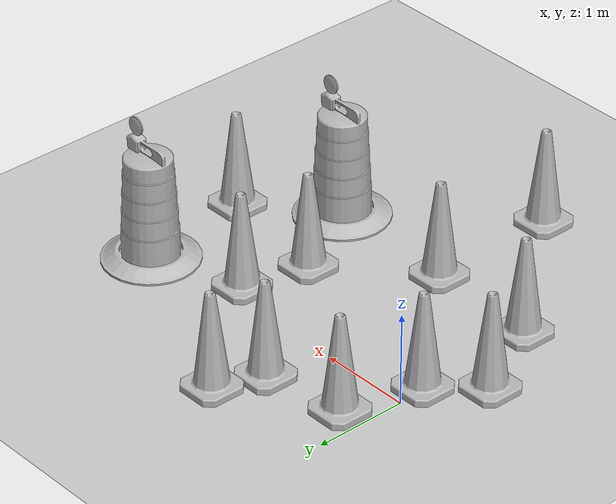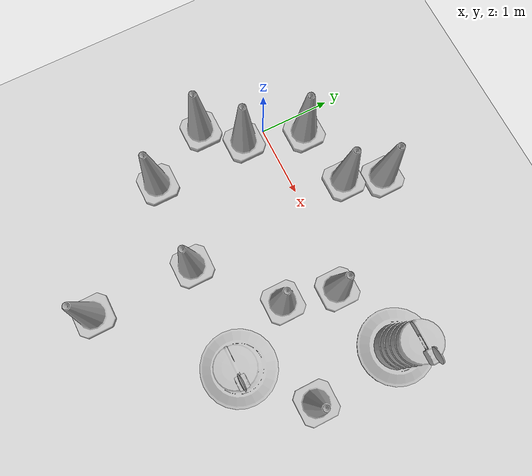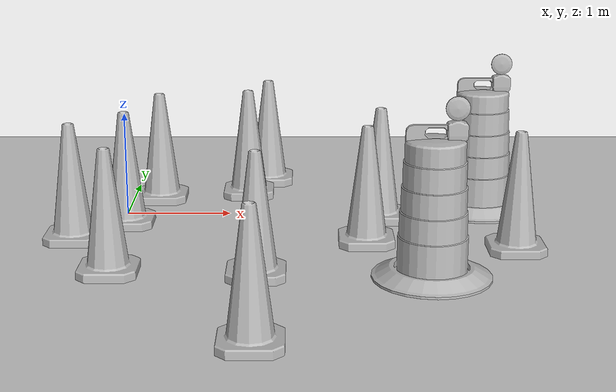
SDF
<sdf version="1.7">
 <world name="default">
  <light name="sun" type="directional">
   <pose>0 0 10 0 -0 0</pose>
   <diffuse>0.8 0.8 0.8 1</diffuse>
   <specular>0.2 0.2 0.2 1</specular>
   <attenuation>
    <range>1000</range>
    <constant>0.9</constant>
    <linear>0.01</linear>
    <quadratic>0.001</quadratic>
   </attenuation>
   <direction>-0.5 0.1 -0.9</direction>
   <spot><inner_angle>0</inner_angle><outer_angle>0</outer_angle><falloff>0</falloff></spot>
  </light>
  <model name="ground_plane">
   <static>1</static>
   <link name="link">
    <collision name="collision">
     <geometry><plane><normal>0 0 1</normal><size>100 100</size></plane></geometry>
     <surface>
      <contact><collide_bitmask>65535</collide_bitmask></contact>
      <friction><ode><mu>100</mu><mu2>50</mu2></ode></friction>
     </surface>
    </collision>
    <visual name="visual">
     <cast_shadows>0</cast_shadows>
     <geometry><plane><normal>0 0 1</normal><size>100 100</size></plane></geometry>
     <material>
      <script><uri>file://media/materials/scripts/gazebo.material</uri><name>Gazebo/Grey</name></script>
     </material>
    </visual>
   </link>
  </model>
  <gravity>0 0 -9.8</gravity>
  <magnetic_field>6e-06 2.3e-05 -4.2e-05</magnetic_field>
  <atmosphere type="adiabatic"/>
  <physics type="ode">
   <max_step_size>0.001</max_step_size>
   <real_time_factor>1</real_time_factor>
   <real_time_update_rate>1000</real_time_update_rate>
  </physics>
  <scene><ambient>0.4 0.4 0.4 1</ambient><background>0.7 0.7 0.7 1</background><shadows>1</shadows></scene>
  <audio><device>default</device></audio>
  <spherical_coordinates>
   <surface_model>EARTH_WGS84</surface_model>
   <latitude_deg>0</latitude_deg>
   <longitude_deg>0</longitude_deg>
   <elevation>0</elevation>
   <heading_deg>0</heading_deg>
  </spherical_coordinates>
  <model name="Construction Cone">
   <link name="link">
    <collision name="collision">
     <geometry>
      <mesh><scale>10 10 10</scale><uri>model://construction_cone/meshes/construction_cone.dae</uri></mesh>
     </geometry>
    </collision>
    <visual name="visual">
     <geometry>
      <mesh><scale>10 10 10</scale><uri>model://construction_cone/meshes/construction_cone.dae</uri></mesh>
     </geometry>
    </visual>
    <inertial>
     <inertia><ixx>1</ixx><ixy>0</ixy><ixz>0</ixz><iyy>1</iyy><iyz>0</iyz><izz>1</izz></inertia>
     <mass>1</mass>
    </inertial>
   </link>
   <pose>1.31264 -1.71887 -0 0 -1e-06 0</pose>
  </model>
  <model name="Construction Barrel">
   <link name="link">
    <inertial>
     <pose>0 0 0.4 0 -0 0</pose>
     <mass>500</mass>
     <inertia><ixx>51.2096</ixx><iyy>51.2096</iyy><izz>25</izz><ixy>0</ixy><ixz>0</ixz><iyz>0</iyz></inertia>
    </inertial>
    <collision name="collision">
     <geometry><mesh><uri>model://construction_barrel/meshes/construction_barrel.dae</uri></mesh></geometry>
    </collision>
    <visual name="visual">
     <geometry><mesh><uri>model://construction_barrel/meshes/construction_barrel.dae</uri></mesh></geometry>
    </visual>
   </link>
   <pose>2.78827 -1.75599 -4e-06 -5e-06 -7e-06 -2.1e-05</pose>
  </model>
  <model name="Construction Cone_0">
   <link name="link">
    <collision name="collision">
     <geometry>
      <mesh><scale>10 10 10</scale><uri>model://construction_cone/meshes/construction_cone.dae</uri></mesh>
     </geometry>
    </collision>
    <visual name="visual">
     <geometry>
      <mesh><scale>10 10 10</scale><uri>model://construction_cone/meshes/construction_cone.dae</uri></mesh>
     </geometry>
    </visual>
    <inertial>
     <inertia><ixx>1</ixx><ixy>0</ixy><ixz>0</ixz><iyy>1</iyy><iyz>0</iyz><izz>1</izz></inertia>
     <mass>1</mass>
    </inertial>
   </link>
   <pose>2.28701 -0.861629 -0 -0 -0 -0</pose>
  </model>
  <model name="Construction Cone_1">
   <link name="link">
    <collision name="collision">
     <geometry>
      <mesh><scale>10 10 10</scale><uri>model://construction_cone/meshes/construction_cone.dae</uri></mesh>
     </geometry>
    </collision>
    <visual name="visual">
     <geometry>
      <mesh><scale>10 10 10</scale><uri>model://construction_cone/meshes/construction_cone.dae</uri></mesh>
     </geometry>
    </visual>
    <inertial>
     <inertia><ixx>1</ixx><ixy>0</ixy><ixz>0</ixz><iyy>1</iyy><iyz>0</iyz><izz>1</izz></inertia>
     <mass>1</mass>
    </inertial>
   </link>
   <pose>2.45169 -0.141372 -0 0 -0 0</pose>
  </model>
  <model name="Construction Barrel_0">
   <link name="link">
    <inertial>
     <pose>0 0 0.4 0 -0 0</pose>
     <mass>500</mass>
     <inertia><ixx>51.2096</ixx><iyy>51.2096</iyy><izz>25</izz><ixy>0</ixy><ixz>0</ixz><iyz>0</iyz></inertia>
    </inertial>
    <collision name="collision">
     <geometry><mesh><uri>model://construction_barrel/meshes/construction_barrel.dae</uri></mesh></geometry>
    </collision>
    <visual name="visual">
     <geometry><mesh><uri>model://construction_barrel/meshes/construction_barrel.dae</uri></mesh></geometry>
    </visual>
   </link>
   <pose>3.45643 0.185545 -2e-06 -7e-06 -4e-06 -1.8e-05</pose>
  </model>
  <model name="Construction Cone_2">
   <link name="link">
    <collision name="collision">
     <geometry>
      <mesh><scale>10 10 10</scale><uri>model://construction_cone/meshes/construction_cone.dae</uri></mesh>
     </geometry>
    </collision>
    <visual name="visual">
     <geometry>
      <mesh><scale>10 10 10</scale><uri>model://construction_cone/meshes/construction_cone.dae</uri></mesh>
     </geometry>
    </visual>
    <inertial>
     <inertia><ixx>1</ixx><ixy>0</ixy><ixz>0</ixz><iyy>1</iyy><iyz>0</iyz><izz>1</izz></inertia>
     <mass>1</mass>
    </inertial>
   </link>
   <pose>1.3518 1.16736 -0 0 -0 0.000181</pose>
  </model>
  <model name="Construction Cone_3">
   <link name="link">
    <collision name="collision">
     <geometry>
      <mesh><scale>10 10 10</scale><uri>model://construction_cone/meshes/construction_cone.dae</uri></mesh>
     </geometry>
    </collision>
    <visual name="visual">
     <geometry>
      <mesh><scale>10 10 10</scale><uri>model://construction_cone/meshes/construction_cone.dae</uri></mesh>
     </geometry>
    </visual>
    <inertial>
     <inertia><ixx>1</ixx><ixy>0</ixy><ixz>0</ixz><iyy>1</iyy><iyz>0</iyz><izz>1</izz></inertia>
     <mass>1</mass>
    </inertial>
   </link>
   <pose>1.15957 0.664402 -0 0 -0 0.000224</pose>
  </model>
  <model name="Construction Cone_4">
   <link name="link">
    <collision name="collision">
     <geometry>
      <mesh><scale>10 10 10</scale><uri>model://construction_cone/meshes/construction_cone.dae</uri></mesh>
     </geometry>
    </collision>
    <visual name="visual">
     <geometry>
      <mesh><scale>10 10 10</scale><uri>model://construction_cone/meshes/construction_cone.dae</uri></mesh>
     </geometry>
    </visual>
    <inertial>
     <inertia><ixx>1</ixx><ixy>0</ixy><ixz>0</ixz><iyy>1</iyy><iyz>0</iyz><izz>1</izz></inertia>
     <mass>1</mass>
    </inertial>
   </link>
   <pose>0.279693 0.510687 -0 0 -1e-06 0</pose>
  </model>
  <model name="Construction Cone_5">
   <link name="link">
    <collision name="collision">
     <geometry>
      <mesh><scale>10 10 10</scale><uri>model://construction_cone/meshes/construction_cone.dae</uri></mesh>
     </geometry>
    </collision>
    <visual name="visual">
     <geometry>
      <mesh><scale>10 10 10</scale><uri>model://construction_cone/meshes/construction_cone.dae</uri></mesh>
     </geometry>
    </visual>
    <inertial>
     <inertia><ixx>1</ixx><ixy>0</ixy><ixz>0</ixz><iyy>1</iyy><iyz>0</iyz><izz>1</izz></inertia>
     <mass>1</mass>
    </inertial>
   </link>
   <pose>0.06083 -1.65281 -0 0 -1e-06 0</pose>
  </model>
  <model name="Construction Cone_6">
   <link name="link">
    <collision name="collision">
     <geometry>
      <mesh><scale>10 10 10</scale><uri>model://construction_cone/meshes/construction_cone.dae</uri></mesh>
     </geometry>
    </collision>
    <visual name="visual">
     <geometry>
      <mesh><scale>10 10 10</scale><uri>model://construction_cone/meshes/construction_cone.dae</uri></mesh>
     </geometry>
    </visual>
    <inertial>
     <inertia><ixx>1</ixx><ixy>0</ixy><ixz>0</ixz><iyy>1</iyy><iyz>0</iyz><izz>1</izz></inertia>
     <mass>1</mass>
    </inertial>
   </link>
   <pose>0.035498 -0.312119 -0 0 -0 0</pose>
  </model>
  <model name="Construction Cone_7">
   <link name="link">
    <collision name="collision">
     <geometry>
      <mesh><scale>10 10 10</scale><uri>model://construction_cone/meshes/construction_cone.dae</uri></mesh>
     </geometry>
    </collision>
    <visual name="visual">
     <geometry>
      <mesh><scale>10 10 10</scale><uri>model://construction_cone/meshes/construction_cone.dae</uri></mesh>
     </geometry>
    </visual>
    <inertial>
     <inertia><ixx>1</ixx><ixy>0</ixy><ixz>0</ixz><iyy>1</iyy><iyz>0</iyz><izz>1</izz></inertia>
     <mass>1</mass>
    </inertial>
   </link>
   <pose>-0.393333 -0.779831 -0 0 -0 0</pose>
  </model>
  <model name="Construction Cone_8">
   <link name="link">
    <collision name="collision">
     <geometry>
      <mesh><scale>10 10 10</scale><uri>model://construction_cone/meshes/construction_cone.dae</uri></mesh>
     </geometry>
    </collision>
    <visual name="visual">
     <geometry>
      <mesh><scale>10 10 10</scale><uri>model://construction_cone/meshes/construction_cone.dae</uri></mesh>
     </geometry>
    </visual>
    <inertial>
     <inertia><ixx>1</ixx><ixy>0</ixy><ixz>0</ixz><iyy>1</iyy><iyz>0</iyz><izz>1</izz></inertia>
     <mass>1</mass>
    </inertial>
   </link>
   <pose>3.61315 -1.07196 -0 0 -0 0</pose>
  </model>
  <model name="Construction Cone_9">
   <link name="link">
    <collision name="collision">
     <geometry>
      <mesh><scale>10 10 10</scale><uri>model://construction_cone/meshes/construction_cone.dae</uri></mesh>
     </geometry>
    </collision>
    <visual name="visual">
     <geometry>
      <mesh><scale>10 10 10</scale><uri>model://construction_cone/meshes/construction_cone.dae</uri></mesh>
     </geometry>
    </visual>
    <inertial>
     <inertia><ixx>1</ixx><ixy>0</ixy><ixz>0</ixz><iyy>1</iyy><iyz>0</iyz><izz>1</izz></inertia>
     <mass>1</mass>
    </inertial>
   </link>
   <pose>1.32309 -3.15892 -0 0 -1e-06 0</pose>
  </model>
 </world>
</sdf>
